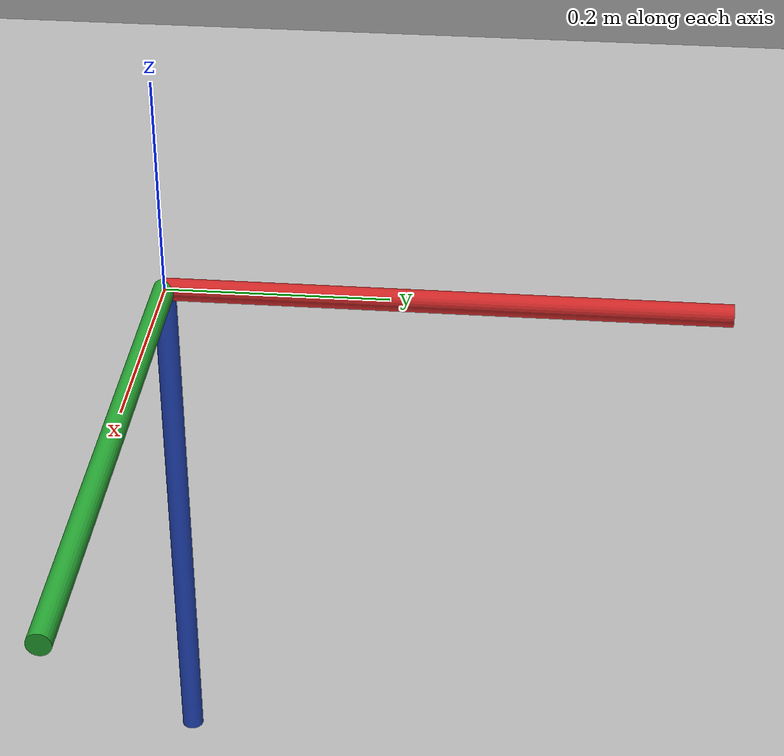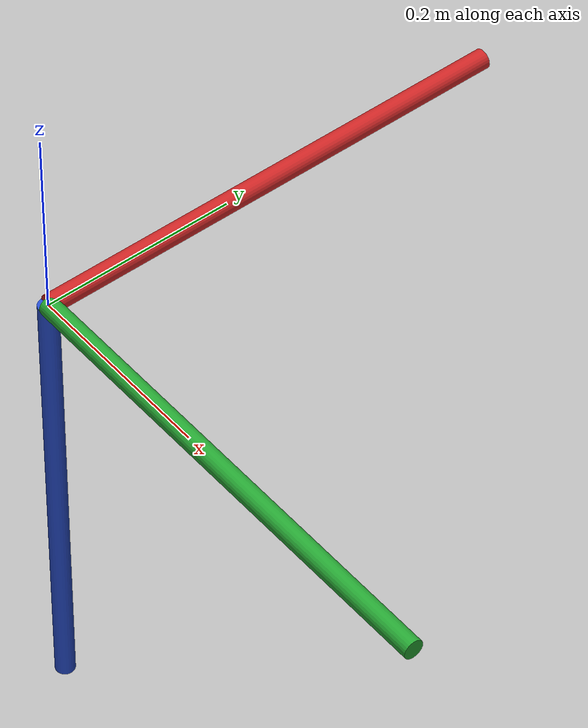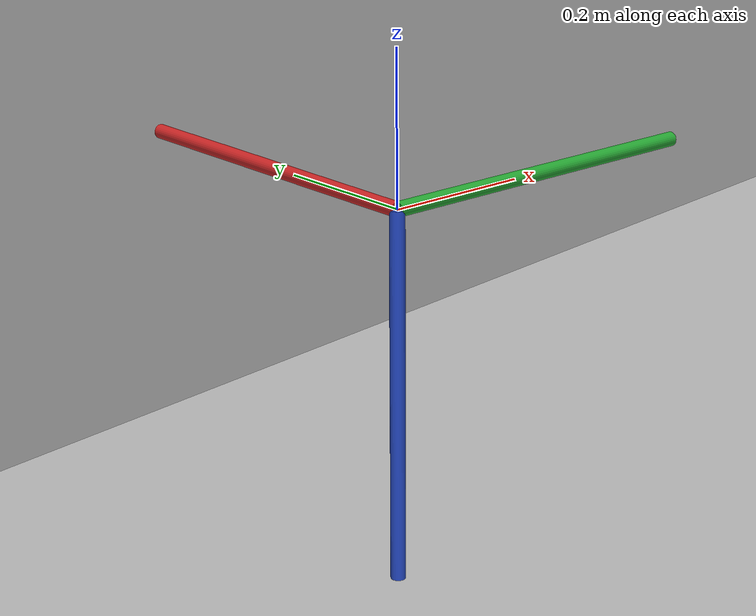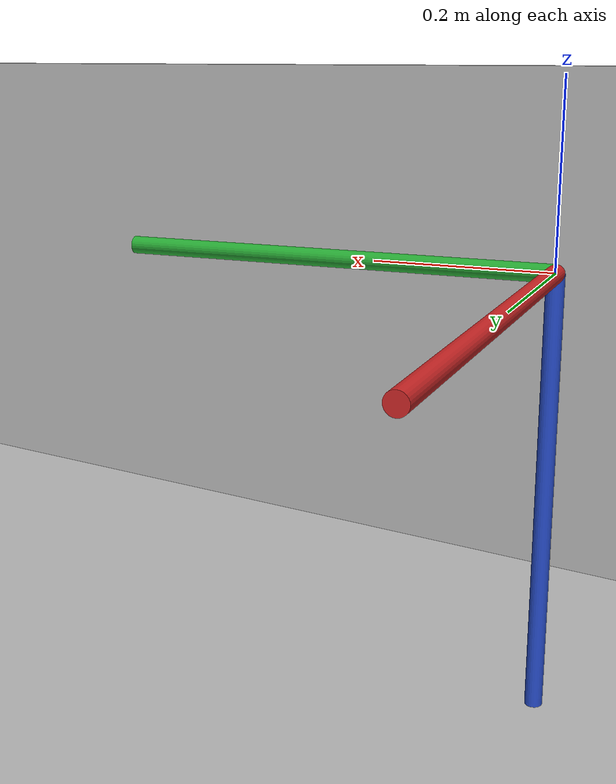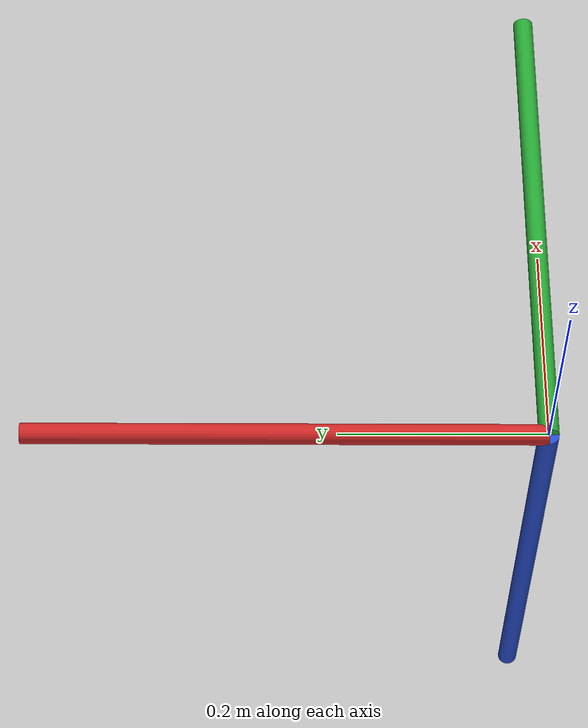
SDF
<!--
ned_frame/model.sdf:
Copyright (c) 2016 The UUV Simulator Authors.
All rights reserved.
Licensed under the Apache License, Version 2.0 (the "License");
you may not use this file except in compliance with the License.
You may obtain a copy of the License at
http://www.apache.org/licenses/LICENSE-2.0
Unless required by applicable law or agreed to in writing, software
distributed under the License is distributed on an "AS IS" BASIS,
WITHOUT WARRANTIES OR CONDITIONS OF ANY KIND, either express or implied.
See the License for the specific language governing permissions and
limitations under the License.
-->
<sdf version="1.5">
    <world name="fortress_world">
        <physics type="ode">
            <max_step_size>0.01</max_step_size>
            <real_time_factor>1</real_time_factor>
            <real_time_update_rate>100</real_time_update_rate>
            <ode>
                <solver>
                <type>quick</type>
                <iters>50</iters>
                <sor>1.2</sor>
                </solver>
            </ode>
        </physics>

        <!-- Origin placed somewhere in the middle of the North Sea  -->
        <spherical_coordinates>
            <latitude_deg>56.71897669633431</latitude_deg>
            <longitude_deg>3.515625</longitude_deg>
        </spherical_coordinates>

        <!-- Global light source -->
        <light type="directional" name="sun1">
            <pose>50 0 150 0 0 0</pose>
            <diffuse>1 1 1 1</diffuse>
            <specular>.1 .1 .1 1</specular>
            <direction>0.3 0.3 -1</direction>
            <cast_shadows>false</cast_shadows>
        </light>

        <!-- Global light source -->
        <light type="directional" name="sun_diffuse">
            <pose>-50 0 -150 0 0 0</pose>
            <diffuse>0.6 0.6 0.6 1</diffuse>
            <specular>0 0 0 1</specular>
            <direction>-0.3 -0.3 -1</direction>
            <cast_shadows>false</cast_shadows>
        </light>

        <include>
            <uri>model://ned_frame</uri>
            <pose>0 0 0 0 0 0</pose>
        </include>

        <!-- Global light source -->
        <include>
            <uri>model://sun</uri>
        </include>

        <!-- Fortress Pool -->
        <include>
            <uri>model://fortress_pool</uri>
            <pose>0 0 0 0 0 0</pose>
        </include>

        <node name="plankton_global_sim_time"
            pkg="plankton_utils"
            exec="plankton_global_sim_time"
            output="screen">
            <param name="use_sim_time" value="$(var use_sim_time)"/>
        </node>

        <plugin name="gazebo_ros" filename="libgazebo_ros_state.so">
            <ros>
                <namespace>/gazebo</namespace>
            </ros>
        </plugin>

        <plugin name="underwater_current_plugin" filename="libuuv_underwater_current_ros_plugin.so">
            <namespace>hydrodynamics</namespace>
            <constant_current>
                <topic>current_velocity</topic>
                <velocity>
                    <mean>0</mean>
                    <min>0</min>
                    <max>8</max>
                    <mu>0.0</mu>
                    <noiseAmp>0.0</noiseAmp>
                </velocity>

                <horizontal_angle>
                    <mean>0</mean>
                    <min>-3.141592653589793238</min>
                    <max>3.141592653589793238</max>
                    <mu>0.0</mu>
                    <noiseAmp>0.0</noiseAmp>
                </horizontal_angle>

                <vertical_angle>
                    <mean>0</mean>
                    <min>-3.141592653589793238</min>
                    <max>3.141592653589793238</max>
                    <mu>0.0</mu>
                    <noiseAmp>0.0</noiseAmp>
                </vertical_angle>
            </constant_current>
        </plugin>

        <plugin name="sc_interface" filename="libuuv_sc_ros_interface_plugin.so"/>
    </world>
</sdf>

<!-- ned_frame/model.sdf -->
<sdf version='1.5'>
    <model name="world_ned">

      <pose>0 0 0 0 0 0</pose>
      <static>true</static>

      <link name="world_ned">
        <gravity>0</gravity>
        <pose>0 0 0 3.14159265359 0 1.5707963267948966</pose>

        <visual name="N_visual">
          <pose>0.25 0 0 1.5707963267948966 0 1.5707963267948966</pose>
          <geometry>
            <cylinder>
              <radius>0.01</radius>
              <length>0.5</length>
            </cylinder>
          </geometry>
          <material>
            <script>
              <uri>file://media/materials/scripts/gazebo.material</uri>
              <name>Gazebo/Red</name>
            </script>
          </material>
        </visual>

        <visual name="E_visual">
          <pose>0 0.25 0 1.5707963267948966 0 0</pose>
          <geometry>
            <cylinder>
              <radius>0.01</radius>
              <length>0.5</length>
            </cylinder>
          </geometry>
          <material>
            <script>
              <uri>file://media/materials/scripts/gazebo.material</uri>
              <name>Gazebo/Green</name>
            </script>
          </material>
        </visual>

        <visual name="D_visual">
          <pose>0 0 0.25 0 0 0</pose>
          <geometry>
            <cylinder>
              <radius>0.01</radius>
              <length>0.5</length>
            </cylinder>
          </geometry>
          <material>
            <script>
              <uri>file://media/materials/scripts/gazebo.material</uri>
              <name>Gazebo/Blue</name>
            </script>
          </material>
        </visual>
      </link>
    </model>
</sdf>

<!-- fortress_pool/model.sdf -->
<sdf version="1.5">
    <model name="fortress_pool">
        <static>true</static>
        <link name="fortress_pool">
            <visual name="pool_visual">
                <pose>0 0 0 1.5708 0 0</pose>
                <geometry>
                    <mesh>
                        <uri>model://fortress_pool/meshes/pool-2.obj</uri>
                        <scale>0.5 0.5 0.5</scale>
                    </mesh>
                </geometry>
            </visual>
            <collision name="pool_visual">
                <pose>0 0 0 1.5708 0 0</pose>
                <geometry>
                    <mesh>
                        <uri>model://fortress_pool/meshes/pool-2.obj</uri>
                        <scale>0.5 0.5 0.5</scale>
                    </mesh>
                </geometry>
            </collision>
            <self_collide>0</self_collide>
        </link>
    </model>
</sdf>
